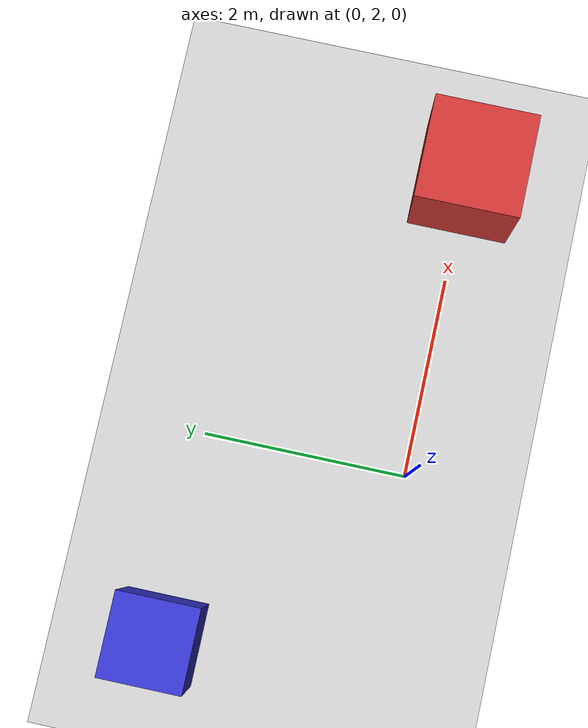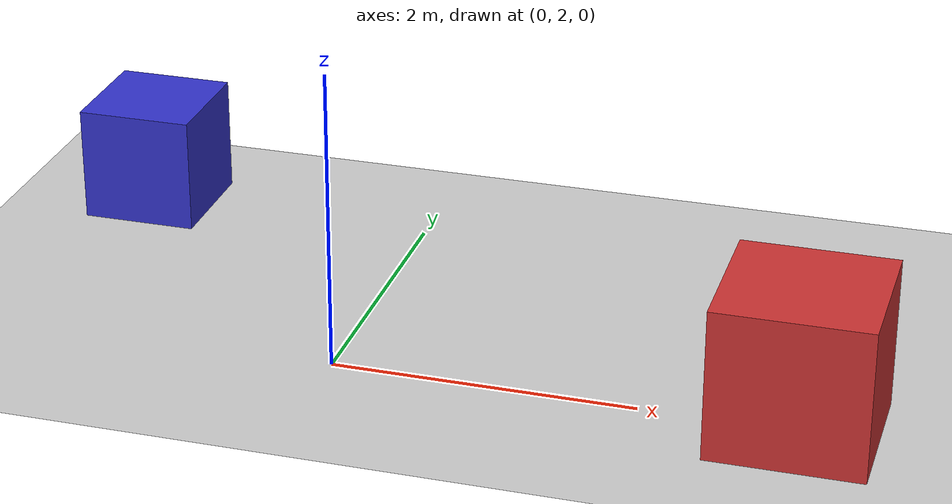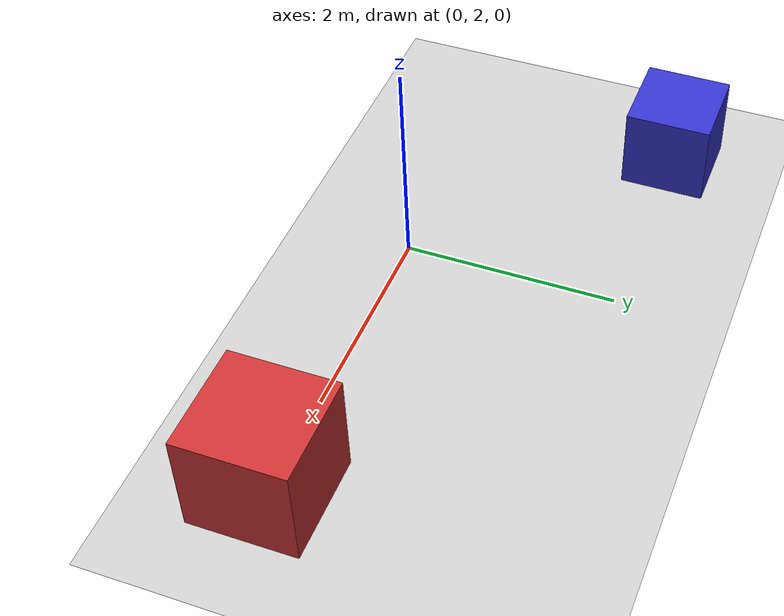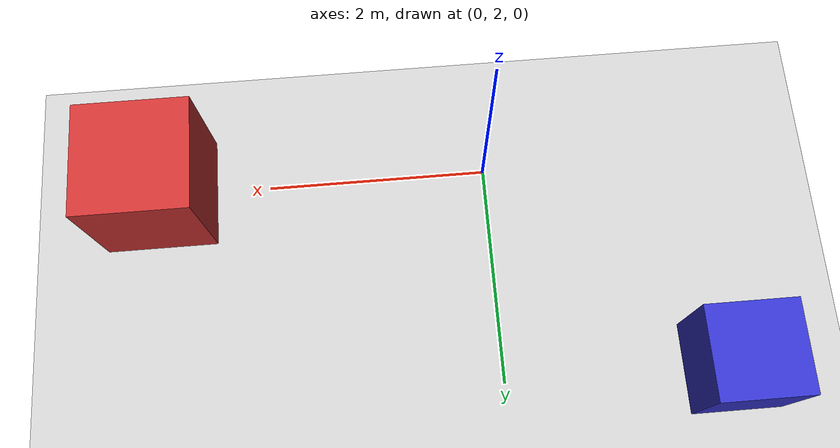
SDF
<?xml version="1.0" ?>
<!-- Simple driveway world (Module 2). Use with r1_rover model via r1_rover_runway.sdf
     or extend this file to include your rover model. -->
<sdf version="1.9">
  <world name="driveway">
    <physics name="1ms" type="ignore">
      <max_step_size>0.001</max_step_size>
      <real_time_factor>1.0</real_time_factor>
    </physics>

    <plugin filename="gz-sim-physics-system" name="gz::sim::systems::Physics"/>
    <plugin filename="gz-sim-user-commands-system" name="gz::sim::systems::UserCommands"/>
    <plugin filename="gz-sim-scene-broadcaster-system" name="gz::sim::systems::SceneBroadcaster"/>
    <plugin filename="gz-sim-sensors-system" name="gz::sim::systems::Sensors">
      <render_engine>ogre2</render_engine>
    </plugin>

    <light type="directional" name="sun">
      <cast_shadows>true</cast_shadows>
      <pose>0 0 10 0 0 0</pose>
      <diffuse>0.8 0.8 0.8 1</diffuse>
      <specular>0.2 0.2 0.2 1</specular>
      <attenuation>
        <range>1000</range>
        <constant>0.9</constant>
        <linear>0.01</linear>
        <quadratic>0.001</quadratic>
      </attenuation>
      <direction>-0.5 0.1 -0.9</direction>
    </light>

    <include>
      <uri>https://fuel.gazebosim.org/1.0/OpenRobotics/models/Ground Plane</uri>
    </include>

    <!-- Simple obstacles (boxes) -->
    <model name="obstacle_1">
      <static>true</static>
      <pose>3 2 0.5 0 0 0</pose>
      <link name="link">
        <collision name="collision">
          <geometry><box><size>1 1 1</size></box></geometry>
        </collision>
        <visual name="visual">
          <geometry><box><size>1 1 1</size></box></geometry>
          <material>
            <ambient>0.8 0.2 0.2 1</ambient>
            <diffuse>0.8 0.2 0.2 1</diffuse>
          </material>
        </visual>
      </link>
    </model>

    <model name="obstacle_2">
      <static>true</static>
      <pose>-2 4 0.4 0 0 0</pose>
      <link name="link">
        <collision name="collision">
          <geometry><box><size>0.8 0.8 0.8</size></box></geometry>
        </collision>
        <visual name="visual">
          <geometry><box><size>0.8 0.8 0.8</size></box></geometry>
          <material>
            <ambient>0.2 0.2 0.8 1</ambient>
            <diffuse>0.2 0.2 0.8 1</diffuse>
          </material>
        </visual>
      </link>
    </model>
  </world>
</sdf>
